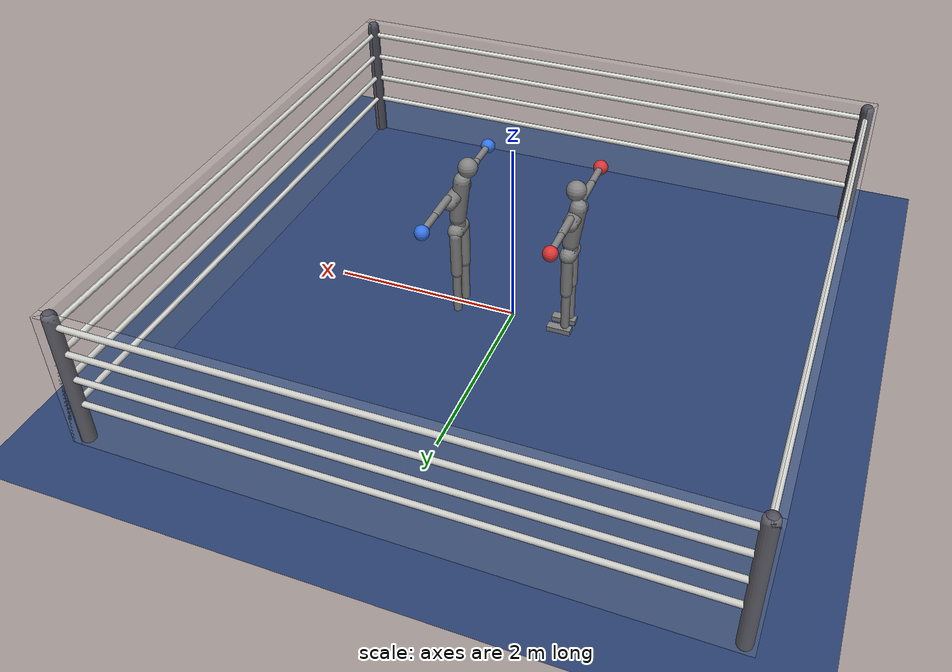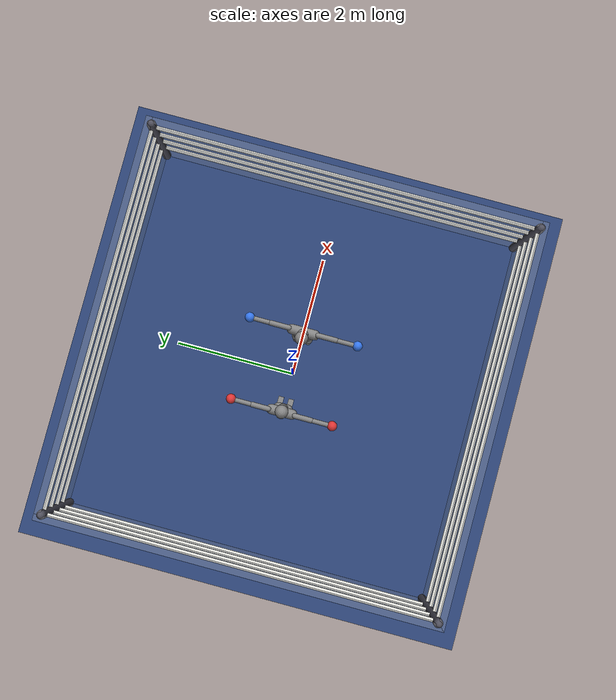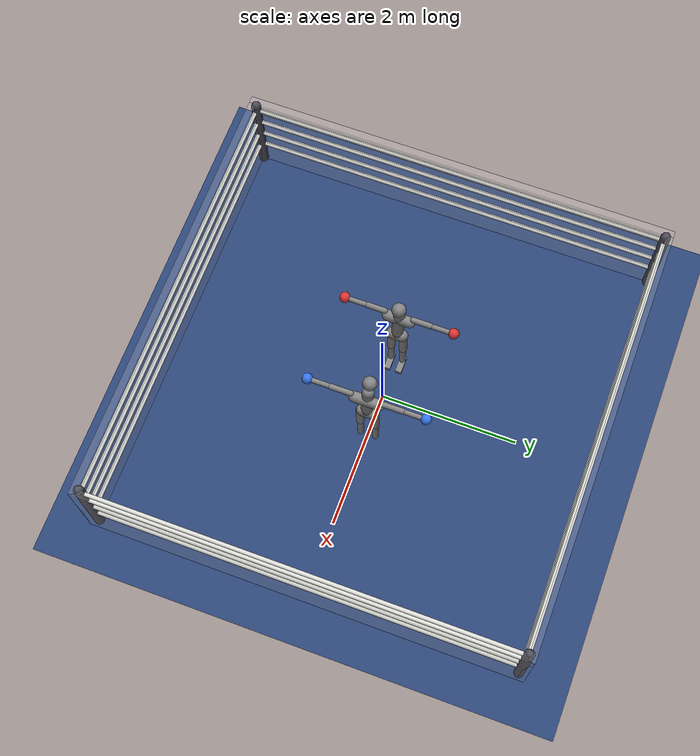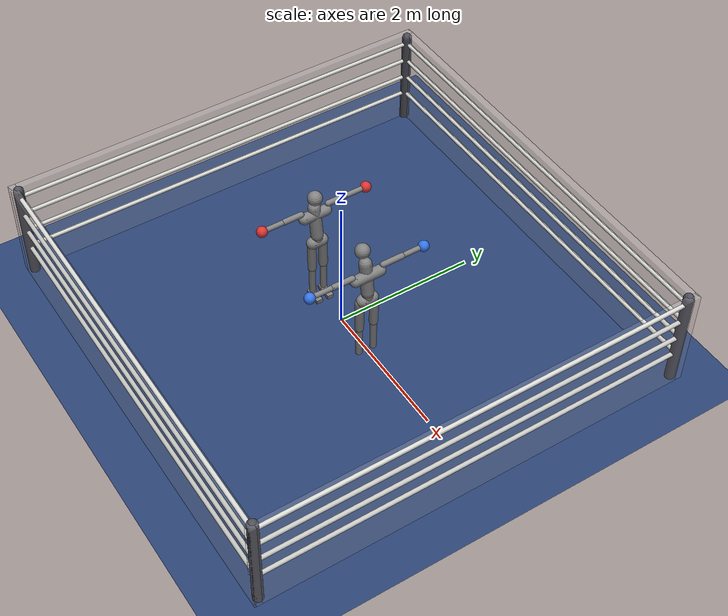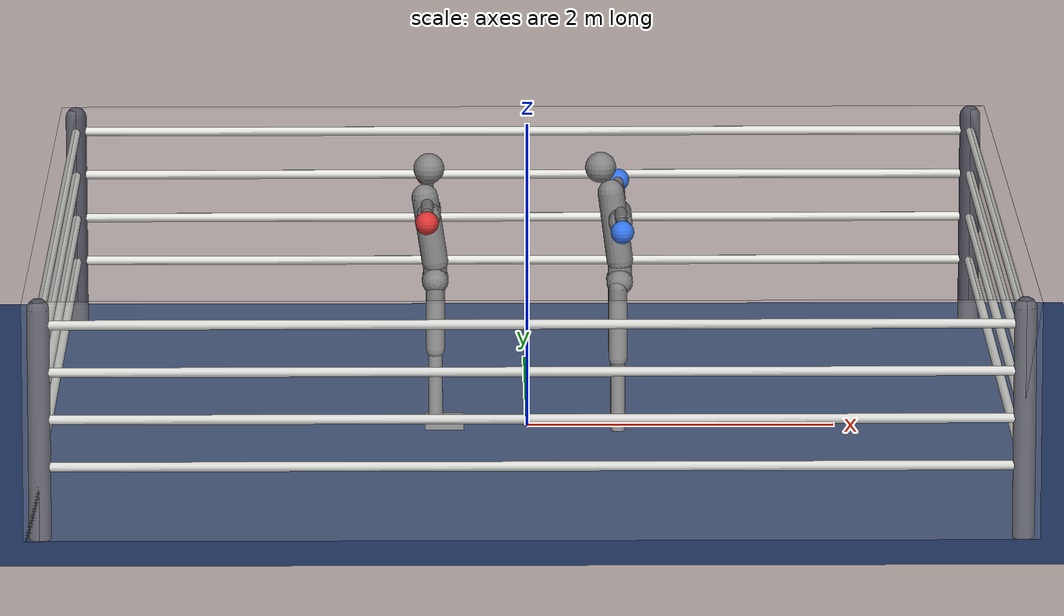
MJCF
<mujoco model="matt_vs_zombie_spar">
  <compiler angle="degree" inertiafromgeom="true" autolimits="true"/>
  <option timestep="0.005" iterations="10" ls_iterations="10" integrator="implicitfast">
    <flag eulerdamp="disable"/>
  </option>
  <default>
    <geom contype="1" conaffinity="1" condim="3" friction="1.0 0.005 0.0001" density="1000" margin="0"/>
    <joint limited="true"/>
    <position ctrllimited="true"/>
  </default>
  <asset>
    <texture name="grid" type="2d" builtin="checker" rgb1=".18 .28 .48" rgb2=".14 .22 .40" width="300" height="300"/>
    <material name="grid" texture="grid" texrepeat="6 6" reflectance="0"/>
  </asset>
  <worldbody>
    <light pos="0 0 5" dir="0 0 -1" directional="true"/>
    <geom name="floor" type="plane" contype="3" conaffinity="3" size="0 0 0.05" material="grid" friction="1.0 0.005 0.0001"/>
    <geom name="rope_n" type="box" pos="0.0000 3.1000 0.7500" size="3.1500 0.0500 0.7500" rgba="0.8 0.8 0.8 0.15"/>
    <geom name="rope_s" type="box" pos="0.0000 -3.1000 0.7500" size="3.1500 0.0500 0.7500" rgba="0.8 0.8 0.8 0.15"/>
    <geom name="rope_e" type="box" pos="3.1000 0.0000 0.7500" size="0.0500 3.1500 0.7500" rgba="0.8 0.8 0.8 0.15"/>
    <geom name="rope_w" type="box" pos="-3.1000 0.0000 0.7500" size="0.0500 3.1500 0.7500" rgba="0.8 0.8 0.8 0.15"/>
    <body name="a_pelvis" pos="-0.6000 0.0000 0.9741" quat="1.00000 0 0 0.00000">
      <freejoint name="a_root"/>
      <geom name="a_pelvis_geom" type="capsule" fromto="0.0000 -0.0700 0.0000 0.0000 0.0700 0.0000" size="0.0850" mass="7.0977" />
      <geom name="a_pelvis_up" type="capsule" fromto="0.0000 0.0000 0.0000 -0.0008 0.0000 0.0758" size="0.0765" mass="4.0351" />
      <body name="a_torso" pos="-0.0008 0.0000 0.0958">
        <joint name="a_abdomen_z" type="hinge" axis="0 0 1" range="-45 45" damping="0.5" armature="0.08" stiffness="0"/>
        <joint name="a_abdomen_y" type="hinge" axis="0 1 0" range="-60 30" damping="0.5" armature="0.08" stiffness="0"/>
        <joint name="a_abdomen_x" type="hinge" axis="1 0 0" range="-35 35" damping="0.5" armature="0.08" stiffness="0"/>
        <geom name="a_torso_geom" type="capsule" fromto="0.0000 0.0000 0.0200 -0.0653 -0.0000 0.4511" size="0.0850" mass="27.8320" />
        <geom name="a_chest_geom" type="capsule" fromto="-0.0402 -0.1614 0.3530 -0.0402 0.1614 0.3530" size="0.0765" mass="0.5"/>
        <geom name="a_head_geom" type="sphere" pos="-0.0385 -0.0000 0.6398" size="0.1000" mass="6.3504" />
        <body name="a_upper_arm_l" pos="-0.0503 0.2018 0.4412">
          <joint name="a_shoulder_x_l" type="hinge" axis="1 0 0" range="-170 30" damping="0.5" armature="0.03" stiffness="0"/>
          <joint name="a_shoulder_z_l" type="hinge" axis="0 0 1" range="-110 110" damping="0.5" armature="0.03" stiffness="0"/>
          <geom name="a_upper_arm_l_geom" type="capsule" fromto="0.0000 0.0000 0.0000 0.0000 0.2524 0.0000" size="0.0400" mass="2.1952" />
          <body name="a_forearm_l" pos="0.0000 0.2524 0.0000">
            <joint name="a_elbow_l" type="hinge" axis="0 0 1" range="-150 0" damping="0.5" armature="0.02" stiffness="0"/>
            <geom name="a_forearm_l_geom" type="capsule" fromto="0.0000 0.0000 0.0000 0.0000 0.2567 0.0000" size="0.0350" mass="1.2544" />
            <geom name="a_glove_l" type="sphere" pos="0.0000 0.3242 0.0000" size="0.0750" mass="0.7534" rgba="0.85 0.2 0.2 1"/>
          </body>
        </body>
        <body name="a_upper_arm_r" pos="-0.0503 -0.2018 0.4412">
          <joint name="a_shoulder_x_r" type="hinge" axis="1 0 0" range="-30 170" damping="0.5" armature="0.03" stiffness="0"/>
          <joint name="a_shoulder_z_r" type="hinge" axis="0 0 1" range="-110 110" damping="0.5" armature="0.03" stiffness="0"/>
          <geom name="a_upper_arm_r_geom" type="capsule" fromto="0.0000 0.0000 0.0000 0.0000 -0.2524 0.0000" size="0.0400" mass="2.1952" />
          <body name="a_forearm_r" pos="0.0000 -0.2524 0.0000">
            <joint name="a_elbow_r" type="hinge" axis="0 0 1" range="0 150" damping="0.5" armature="0.02" stiffness="0"/>
            <geom name="a_forearm_r_geom" type="capsule" fromto="0.0000 0.0000 0.0000 0.0000 -0.2567 0.0000" size="0.0350" mass="1.2544" />
            <geom name="a_glove_r" type="sphere" pos="0.0000 -0.3242 0.0000" size="0.0750" mass="0.7534" rgba="0.85 0.2 0.2 1"/>
          </body>
        </body>
      </body>
      <body name="a_thigh_l" pos="0.0008 0.0857 -0.0302">
        <joint name="a_hip_x_l" type="hinge" axis="1 0 0" range="-40 40" damping="0.5" armature="0.1" stiffness="0"/>
        <joint name="a_hip_z_l" type="hinge" axis="0 0 1" range="-35 35" damping="0.5" armature="0.1" stiffness="0"/>
        <joint name="a_hip_y_l" type="hinge" axis="0 1 0" range="-120 30" damping="0.5" armature="0.1" stiffness="0"/>
        <geom name="a_thigh_l_geom" type="capsule" fromto="0.0000 0.0000 0.0000 0.0000 0.0000 -0.4154" size="0.0600" mass="7.8400" />
        <body name="a_shin_l" pos="0.0000 0.0000 -0.4154">
          <joint name="a_knee_l" type="hinge" axis="0 1 0" range="0 150" damping="0.5" armature="0.1" stiffness="0"/>
          <geom name="a_shin_l_geom" type="capsule" fromto="0.0000 0.0000 0.0000 0.0000 0.0000 -0.4309" size="0.0450" mass="3.6456" />
          <body name="a_foot_l" pos="0.0000 0.0000 -0.4309">
            <joint name="a_ankle_y_l" type="hinge" axis="0 1 0" range="-20 50" damping="0.5" armature="0.03" stiffness="0"/>
            <joint name="a_ankle_x_l" type="hinge" axis="1 0 0" range="-25 25" damping="0.5" armature="0.03" stiffness="0"/>
            <geom name="a_foot_l_geom" type="box" pos="0.0581 0.0000 -0.0708" size="0.1262 0.0450 0.0280" mass="1.1368" friction="1.0 0.005 0.0001"/>
            <site name="a_foot_l_site" pos="0.0581 0.0000 -0.0708" size="0.01"/>
          </body>
        </body>
      </body>
      <body name="a_thigh_r" pos="0.0008 -0.0857 -0.0302">
        <joint name="a_hip_x_r" type="hinge" axis="1 0 0" range="-40 40" damping="0.5" armature="0.1" stiffness="0"/>
        <joint name="a_hip_z_r" type="hinge" axis="0 0 1" range="-35 35" damping="0.5" armature="0.1" stiffness="0"/>
        <joint name="a_hip_y_r" type="hinge" axis="0 1 0" range="-120 30" damping="0.5" armature="0.1" stiffness="0"/>
        <geom name="a_thigh_r_geom" type="capsule" fromto="0.0000 0.0000 0.0000 0.0000 0.0000 -0.4154" size="0.0600" mass="7.8400" />
        <body name="a_shin_r" pos="0.0000 0.0000 -0.4154">
          <joint name="a_knee_r" type="hinge" axis="0 1 0" range="0 150" damping="0.5" armature="0.1" stiffness="0"/>
          <geom name="a_shin_r_geom" type="capsule" fromto="0.0000 0.0000 0.0000 0.0000 0.0000 -0.4309" size="0.0450" mass="3.6456" />
          <body name="a_foot_r" pos="0.0000 0.0000 -0.4309">
            <joint name="a_ankle_y_r" type="hinge" axis="0 1 0" range="-20 50" damping="0.5" armature="0.03" stiffness="0"/>
            <joint name="a_ankle_x_r" type="hinge" axis="1 0 0" range="-25 25" damping="0.5" armature="0.03" stiffness="0"/>
            <geom name="a_foot_r_geom" type="box" pos="0.0581 0.0000 -0.0708" size="0.1262 0.0450 0.0280" mass="1.1368" friction="1.0 0.005 0.0001"/>
            <site name="a_foot_r_site" pos="0.0581 0.0000 -0.0708" size="0.01"/>
          </body>
        </body>
      </body>
    </body>
    <body name="b_pelvis" pos="0.6000 0.0000 0.9644" quat="0.00000 0 0 1.00000">
      <freejoint name="b_root"/>
      <geom name="b_pelvis_geom" type="capsule" fromto="0.0000 -0.0700 0.0000 0.0000 0.0700 0.0000" size="0.0850" mass="6.9128" />
      <geom name="b_pelvis_up" type="capsule" fromto="0.0000 0.0000 0.0000 -0.0022 -0.0000 0.0934" size="0.0765" mass="4.3194" />
      <body name="b_torso" pos="-0.0022 -0.0000 0.1134">
        <joint name="b_abdomen_z" type="hinge" axis="0 0 1" range="-45 45" damping="0.5" armature="0.08" stiffness="0"/>
        <joint name="b_abdomen_y" type="hinge" axis="0 1 0" range="-60 30" damping="0.5" armature="0.08" stiffness="0"/>
        <joint name="b_abdomen_x" type="hinge" axis="1 0 0" range="-35 35" damping="0.5" armature="0.08" stiffness="0"/>
        <geom name="b_torso_geom" type="capsule" fromto="0.0000 0.0000 0.0200 0.0595 0.0000 0.4721" size="0.0850" mass="28.0805" />
        <geom name="b_chest_geom" type="capsule" fromto="0.0001 -0.1803 0.3067 0.0001 0.1803 0.3067" size="0.0765" mass="0.5"/>
        <geom name="b_head_geom" type="sphere" pos="0.1269 0.0000 0.6388" size="0.1000" mass="6.4071" />
        <body name="b_upper_arm_l" pos="0.0001 0.2254 0.3834">
          <joint name="b_shoulder_x_l" type="hinge" axis="1 0 0" range="-170 30" damping="0.5" armature="0.03" stiffness="0"/>
          <joint name="b_shoulder_z_l" type="hinge" axis="0 0 1" range="-110 110" damping="0.5" armature="0.03" stiffness="0"/>
          <geom name="b_upper_arm_l_geom" type="capsule" fromto="0.0000 0.0000 0.0000 0.0000 0.2836 0.0000" size="0.0400" mass="2.2148" />
          <body name="b_forearm_l" pos="0.0000 0.2836 0.0000">
            <joint name="b_elbow_l" type="hinge" axis="0 0 1" range="-150 0" damping="0.5" armature="0.02" stiffness="0"/>
            <geom name="b_forearm_l_geom" type="capsule" fromto="0.0000 0.0000 0.0000 0.0000 0.2638 0.0000" size="0.0350" mass="1.2656" />
            <geom name="b_glove_l" type="sphere" pos="0.0000 0.3313 0.0000" size="0.0750" mass="0.7576" rgba="0.2 0.45 0.9 1"/>
          </body>
        </body>
        <body name="b_upper_arm_r" pos="0.0001 -0.2254 0.3834">
          <joint name="b_shoulder_x_r" type="hinge" axis="1 0 0" range="-30 170" damping="0.5" armature="0.03" stiffness="0"/>
          <joint name="b_shoulder_z_r" type="hinge" axis="0 0 1" range="-110 110" damping="0.5" armature="0.03" stiffness="0"/>
          <geom name="b_upper_arm_r_geom" type="capsule" fromto="0.0000 0.0000 0.0000 0.0000 -0.2841 0.0000" size="0.0400" mass="2.2148" />
          <body name="b_forearm_r" pos="0.0000 -0.2841 0.0000">
            <joint name="b_elbow_r" type="hinge" axis="0 0 1" range="0 150" damping="0.5" armature="0.02" stiffness="0"/>
            <geom name="b_forearm_r_geom" type="capsule" fromto="0.0000 0.0000 0.0000 0.0000 -0.2545 0.0000" size="0.0350" mass="1.2656" />
            <geom name="b_glove_r" type="sphere" pos="0.0000 -0.3220 0.0000" size="0.0750" mass="0.7576" rgba="0.2 0.45 0.9 1"/>
          </body>
        </body>
      </body>
      <body name="b_thigh_l" pos="0.0114 0.1094 -0.0284">
        <joint name="b_hip_x_l" type="hinge" axis="1 0 0" range="-40 40" damping="0.5" armature="0.1" stiffness="0"/>
        <joint name="b_hip_z_l" type="hinge" axis="0 0 1" range="-35 35" damping="0.5" armature="0.1" stiffness="0"/>
        <joint name="b_hip_y_l" type="hinge" axis="0 1 0" range="-120 30" damping="0.5" armature="0.1" stiffness="0"/>
        <geom name="b_thigh_l_geom" type="capsule" fromto="0.0000 0.0000 0.0000 0.0000 0.0000 -0.4648" size="0.0600" mass="7.9100" />
        <body name="b_shin_l" pos="0.0000 0.0000 -0.4648">
          <joint name="b_knee_l" type="hinge" axis="0 1 0" range="0 150" damping="0.5" armature="0.1" stiffness="0"/>
          <geom name="b_shin_l_geom" type="capsule" fromto="0.0000 0.0000 0.0000 0.0000 0.0000 -0.4873" size="0.0450" mass="3.6781" />
          <body name="b_foot_l" pos="0.0000 0.0000 -0.4873">
            <joint name="b_ankle_y_l" type="hinge" axis="0 1 0" range="-20 50" damping="0.5" armature="0.03" stiffness="0"/>
            <joint name="b_ankle_x_l" type="hinge" axis="1 0 0" range="-25 25" damping="0.5" armature="0.03" stiffness="0"/>
            <geom name="b_foot_l_geom" type="box" pos="0.0610 0.0000 -0.0548" size="0.1325 0.0450 0.0280" mass="1.1469" friction="1.0 0.005 0.0001"/>
            <site name="b_foot_l_site" pos="0.0610 0.0000 -0.0548" size="0.01"/>
          </body>
        </body>
      </body>
      <body name="b_thigh_r" pos="0.0114 -0.1094 -0.0284">
        <joint name="b_hip_x_r" type="hinge" axis="1 0 0" range="-40 40" damping="0.5" armature="0.1" stiffness="0"/>
        <joint name="b_hip_z_r" type="hinge" axis="0 0 1" range="-35 35" damping="0.5" armature="0.1" stiffness="0"/>
        <joint name="b_hip_y_r" type="hinge" axis="0 1 0" range="-120 30" damping="0.5" armature="0.1" stiffness="0"/>
        <geom name="b_thigh_r_geom" type="capsule" fromto="0.0000 0.0000 0.0000 0.0000 0.0000 -0.4584" size="0.0600" mass="7.9100" />
        <body name="b_shin_r" pos="0.0000 0.0000 -0.4584">
          <joint name="b_knee_r" type="hinge" axis="0 1 0" range="0 150" damping="0.5" armature="0.1" stiffness="0"/>
          <geom name="b_shin_r_geom" type="capsule" fromto="0.0000 0.0000 0.0000 0.0000 0.0000 -0.4889" size="0.0450" mass="3.6781" />
          <body name="b_foot_r" pos="0.0000 0.0000 -0.4889">
            <joint name="b_ankle_y_r" type="hinge" axis="0 1 0" range="-20 50" damping="0.5" armature="0.03" stiffness="0"/>
            <joint name="b_ankle_x_r" type="hinge" axis="1 0 0" range="-25 25" damping="0.5" armature="0.03" stiffness="0"/>
            <geom name="b_foot_r_geom" type="box" pos="0.0589 0.0000 -0.0548" size="0.1280 0.0450 0.0280" mass="1.1469" friction="1.0 0.005 0.0001"/>
            <site name="b_foot_r_site" pos="0.0589 0.0000 -0.0548" size="0.01"/>
          </body>
        </body>
      </body>
    </body>
      <geom name="rope_n_0" type="capsule" fromto="-3.05 3.05 0.45 3.05 3.05 0.45" size="0.03" solref="0.2 1" contype="3" conaffinity="3" rgba="0.86 0.86 0.84 1"/>
    <geom name="rope_s_0" type="capsule" fromto="-3.05 -3.05 0.45 3.05 -3.05 0.45" size="0.03" solref="0.2 1" contype="3" conaffinity="3" rgba="0.86 0.86 0.84 1"/>
    <geom name="rope_e_0" type="capsule" fromto="3.05 -3.05 0.45 3.05 3.05 0.45" size="0.03" solref="0.2 1" contype="3" conaffinity="3" rgba="0.86 0.86 0.84 1"/>
    <geom name="rope_w_0" type="capsule" fromto="-3.05 -3.05 0.45 -3.05 3.05 0.45" size="0.03" solref="0.2 1" contype="3" conaffinity="3" rgba="0.86 0.86 0.84 1"/>
    <geom name="rope_n_1" type="capsule" fromto="-3.05 3.05 0.75 3.05 3.05 0.75" size="0.03" solref="0.2 1" contype="3" conaffinity="3" rgba="0.86 0.86 0.84 1"/>
    <geom name="rope_s_1" type="capsule" fromto="-3.05 -3.05 0.75 3.05 -3.05 0.75" size="0.03" solref="0.2 1" contype="3" conaffinity="3" rgba="0.86 0.86 0.84 1"/>
    <geom name="rope_e_1" type="capsule" fromto="3.05 -3.05 0.75 3.05 3.05 0.75" size="0.03" solref="0.2 1" contype="3" conaffinity="3" rgba="0.86 0.86 0.84 1"/>
    <geom name="rope_w_1" type="capsule" fromto="-3.05 -3.05 0.75 -3.05 3.05 0.75" size="0.03" solref="0.2 1" contype="3" conaffinity="3" rgba="0.86 0.86 0.84 1"/>
    <geom name="rope_n_2" type="capsule" fromto="-3.05 3.05 1.05 3.05 3.05 1.05" size="0.03" solref="0.2 1" contype="3" conaffinity="3" rgba="0.86 0.86 0.84 1"/>
    <geom name="rope_s_2" type="capsule" fromto="-3.05 -3.05 1.05 3.05 -3.05 1.05" size="0.03" solref="0.2 1" contype="3" conaffinity="3" rgba="0.86 0.86 0.84 1"/>
    <geom name="rope_e_2" type="capsule" fromto="3.05 -3.05 1.05 3.05 3.05 1.05" size="0.03" solref="0.2 1" contype="3" conaffinity="3" rgba="0.86 0.86 0.84 1"/>
    <geom name="rope_w_2" type="capsule" fromto="-3.05 -3.05 1.05 -3.05 3.05 1.05" size="0.03" solref="0.2 1" contype="3" conaffinity="3" rgba="0.86 0.86 0.84 1"/>
    <geom name="rope_n_3" type="capsule" fromto="-3.05 3.05 1.35 3.05 3.05 1.35" size="0.03" solref="0.2 1" contype="3" conaffinity="3" rgba="0.86 0.86 0.84 1"/>
    <geom name="rope_s_3" type="capsule" fromto="-3.05 -3.05 1.35 3.05 -3.05 1.35" size="0.03" solref="0.2 1" contype="3" conaffinity="3" rgba="0.86 0.86 0.84 1"/>
    <geom name="rope_e_3" type="capsule" fromto="3.05 -3.05 1.35 3.05 3.05 1.35" size="0.03" solref="0.2 1" contype="3" conaffinity="3" rgba="0.86 0.86 0.84 1"/>
    <geom name="rope_w_3" type="capsule" fromto="-3.05 -3.05 1.35 -3.05 3.05 1.35" size="0.03" solref="0.2 1" contype="3" conaffinity="3" rgba="0.86 0.86 0.84 1"/>
    <geom name="post_ne" type="capsule" fromto="3.05 3.05 0 3.05 3.05 1.45" size="0.07" contype="3" conaffinity="3" rgba="0.3 0.3 0.35 1"/>
    <geom name="post_nw" type="capsule" fromto="-3.05 3.05 0 -3.05 3.05 1.45" size="0.07" contype="3" conaffinity="3" rgba="0.3 0.3 0.35 1"/>
    <geom name="post_se" type="capsule" fromto="3.05 -3.05 0 3.05 -3.05 1.45" size="0.07" contype="3" conaffinity="3" rgba="0.3 0.3 0.35 1"/>
    <geom name="post_sw" type="capsule" fromto="-3.05 -3.05 0 -3.05 -3.05 1.45" size="0.07" contype="3" conaffinity="3" rgba="0.3 0.3 0.35 1"/>
  </worldbody>
  <contact>
    <exclude body1="a_pelvis" body2="a_torso"/>
    <exclude body1="a_pelvis" body2="a_thigh_l"/>
    <exclude body1="a_thigh_l" body2="a_shin_l"/>
    <exclude body1="a_shin_l" body2="a_foot_l"/>
    <exclude body1="a_torso" body2="a_upper_arm_l"/>
    <exclude body1="a_upper_arm_l" body2="a_forearm_l"/>
    <exclude body1="a_pelvis" body2="a_thigh_r"/>
    <exclude body1="a_thigh_r" body2="a_shin_r"/>
    <exclude body1="a_shin_r" body2="a_foot_r"/>
    <exclude body1="a_torso" body2="a_upper_arm_r"/>
    <exclude body1="a_upper_arm_r" body2="a_forearm_r"/>
    <exclude body1="b_pelvis" body2="b_torso"/>
    <exclude body1="b_pelvis" body2="b_thigh_l"/>
    <exclude body1="b_thigh_l" body2="b_shin_l"/>
    <exclude body1="b_shin_l" body2="b_foot_l"/>
    <exclude body1="b_torso" body2="b_upper_arm_l"/>
    <exclude body1="b_upper_arm_l" body2="b_forearm_l"/>
    <exclude body1="b_pelvis" body2="b_thigh_r"/>
    <exclude body1="b_thigh_r" body2="b_shin_r"/>
    <exclude body1="b_shin_r" body2="b_foot_r"/>
    <exclude body1="b_torso" body2="b_upper_arm_r"/>
    <exclude body1="b_upper_arm_r" body2="b_forearm_r"/>
  </contact>
  <actuator>
    <position name="a_abdomen_z" joint="a_abdomen_z" kp="450.0" kv="21.0" forcerange="-170.0 170.0" ctrlrange="-0.7854 0.7854"/>
    <position name="a_abdomen_y" joint="a_abdomen_y" kp="450.0" kv="21.0" forcerange="-170.0 170.0" ctrlrange="-1.0472 0.5236"/>
    <position name="a_abdomen_x" joint="a_abdomen_x" kp="450.0" kv="21.0" forcerange="-170.0 170.0" ctrlrange="-0.6109 0.6109"/>
    <position name="a_shoulder_x_l" joint="a_shoulder_x_l" kp="160.0" kv="8.0" forcerange="-100.0 100.0" ctrlrange="-2.9671 0.5236"/>
    <position name="a_shoulder_z_l" joint="a_shoulder_z_l" kp="160.0" kv="8.0" forcerange="-100.0 100.0" ctrlrange="-1.9199 1.9199"/>
    <position name="a_elbow_l" joint="a_elbow_l" kp="110.0" kv="5.5" forcerange="-70.0 70.0" ctrlrange="-2.6180 0.0000"/>
    <position name="a_shoulder_x_r" joint="a_shoulder_x_r" kp="160.0" kv="8.0" forcerange="-100.0 100.0" ctrlrange="-0.5236 2.9671"/>
    <position name="a_shoulder_z_r" joint="a_shoulder_z_r" kp="160.0" kv="8.0" forcerange="-100.0 100.0" ctrlrange="-1.9199 1.9199"/>
    <position name="a_elbow_r" joint="a_elbow_r" kp="110.0" kv="5.5" forcerange="-70.0 70.0" ctrlrange="0.0000 2.6180"/>
    <position name="a_hip_x_l" joint="a_hip_x_l" kp="600.0" kv="30.0" forcerange="-240.0 240.0" ctrlrange="-0.6981 0.6981"/>
    <position name="a_hip_z_l" joint="a_hip_z_l" kp="600.0" kv="30.0" forcerange="-240.0 240.0" ctrlrange="-0.6109 0.6109"/>
    <position name="a_hip_y_l" joint="a_hip_y_l" kp="600.0" kv="30.0" forcerange="-240.0 240.0" ctrlrange="-2.0944 0.5236"/>
    <position name="a_knee_l" joint="a_knee_l" kp="600.0" kv="30.0" forcerange="-260.0 260.0" ctrlrange="0.0000 2.6180"/>
    <position name="a_ankle_y_l" joint="a_ankle_y_l" kp="750.0" kv="30.0" forcerange="-220.0 220.0" ctrlrange="-0.3491 0.8727"/>
    <position name="a_ankle_x_l" joint="a_ankle_x_l" kp="80.0" kv="4.0" forcerange="-60.0 60.0" ctrlrange="-0.4363 0.4363"/>
    <position name="a_hip_x_r" joint="a_hip_x_r" kp="600.0" kv="30.0" forcerange="-240.0 240.0" ctrlrange="-0.6981 0.6981"/>
    <position name="a_hip_z_r" joint="a_hip_z_r" kp="600.0" kv="30.0" forcerange="-240.0 240.0" ctrlrange="-0.6109 0.6109"/>
    <position name="a_hip_y_r" joint="a_hip_y_r" kp="600.0" kv="30.0" forcerange="-240.0 240.0" ctrlrange="-2.0944 0.5236"/>
    <position name="a_knee_r" joint="a_knee_r" kp="600.0" kv="30.0" forcerange="-260.0 260.0" ctrlrange="0.0000 2.6180"/>
    <position name="a_ankle_y_r" joint="a_ankle_y_r" kp="750.0" kv="30.0" forcerange="-220.0 220.0" ctrlrange="-0.3491 0.8727"/>
    <position name="a_ankle_x_r" joint="a_ankle_x_r" kp="80.0" kv="4.0" forcerange="-60.0 60.0" ctrlrange="-0.4363 0.4363"/>
    <position name="b_abdomen_z" joint="b_abdomen_z" kp="450.0" kv="21.0" forcerange="-170.0 170.0" ctrlrange="-0.7854 0.7854"/>
    <position name="b_abdomen_y" joint="b_abdomen_y" kp="450.0" kv="21.0" forcerange="-170.0 170.0" ctrlrange="-1.0472 0.5236"/>
    <position name="b_abdomen_x" joint="b_abdomen_x" kp="450.0" kv="21.0" forcerange="-170.0 170.0" ctrlrange="-0.6109 0.6109"/>
    <position name="b_shoulder_x_l" joint="b_shoulder_x_l" kp="160.0" kv="8.0" forcerange="-100.0 100.0" ctrlrange="-2.9671 0.5236"/>
    <position name="b_shoulder_z_l" joint="b_shoulder_z_l" kp="160.0" kv="8.0" forcerange="-100.0 100.0" ctrlrange="-1.9199 1.9199"/>
    <position name="b_elbow_l" joint="b_elbow_l" kp="110.0" kv="5.5" forcerange="-70.0 70.0" ctrlrange="-2.6180 0.0000"/>
    <position name="b_shoulder_x_r" joint="b_shoulder_x_r" kp="160.0" kv="8.0" forcerange="-100.0 100.0" ctrlrange="-0.5236 2.9671"/>
    <position name="b_shoulder_z_r" joint="b_shoulder_z_r" kp="160.0" kv="8.0" forcerange="-100.0 100.0" ctrlrange="-1.9199 1.9199"/>
    <position name="b_elbow_r" joint="b_elbow_r" kp="110.0" kv="5.5" forcerange="-70.0 70.0" ctrlrange="0.0000 2.6180"/>
    <position name="b_hip_x_l" joint="b_hip_x_l" kp="600.0" kv="30.0" forcerange="-240.0 240.0" ctrlrange="-0.6981 0.6981"/>
    <position name="b_hip_z_l" joint="b_hip_z_l" kp="600.0" kv="30.0" forcerange="-240.0 240.0" ctrlrange="-0.6109 0.6109"/>
    <position name="b_hip_y_l" joint="b_hip_y_l" kp="600.0" kv="30.0" forcerange="-240.0 240.0" ctrlrange="-2.0944 0.5236"/>
    <position name="b_knee_l" joint="b_knee_l" kp="600.0" kv="30.0" forcerange="-260.0 260.0" ctrlrange="0.0000 2.6180"/>
    <position name="b_ankle_y_l" joint="b_ankle_y_l" kp="750.0" kv="30.0" forcerange="-220.0 220.0" ctrlrange="-0.3491 0.8727"/>
    <position name="b_ankle_x_l" joint="b_ankle_x_l" kp="80.0" kv="4.0" forcerange="-60.0 60.0" ctrlrange="-0.4363 0.4363"/>
    <position name="b_hip_x_r" joint="b_hip_x_r" kp="600.0" kv="30.0" forcerange="-240.0 240.0" ctrlrange="-0.6981 0.6981"/>
    <position name="b_hip_z_r" joint="b_hip_z_r" kp="600.0" kv="30.0" forcerange="-240.0 240.0" ctrlrange="-0.6109 0.6109"/>
    <position name="b_hip_y_r" joint="b_hip_y_r" kp="600.0" kv="30.0" forcerange="-240.0 240.0" ctrlrange="-2.0944 0.5236"/>
    <position name="b_knee_r" joint="b_knee_r" kp="600.0" kv="30.0" forcerange="-260.0 260.0" ctrlrange="0.0000 2.6180"/>
    <position name="b_ankle_y_r" joint="b_ankle_y_r" kp="750.0" kv="30.0" forcerange="-220.0 220.0" ctrlrange="-0.3491 0.8727"/>
    <position name="b_ankle_x_r" joint="b_ankle_x_r" kp="80.0" kv="4.0" forcerange="-60.0 60.0" ctrlrange="-0.4363 0.4363"/>
  </actuator>
  <keyframe>
    <key name="stand" qpos="-0.6000 0.0000 0.9544 1.00000 0 0 0.00000 0.0000 0.0000 0.0000 -1.3265 -0.7330 -1.9548 1.3265 0.7330 1.9548 0.0000 0.0000 -0.1765 0.4538 -0.2773 0.0000 0.0000 0.0000 -0.1765 0.4538 -0.2773 0.0000 0.6000 0.0000 1.0409 0.00000 0 0 1.00000 0.0000 0.0000 0.0000 -1.3265 -0.7330 -1.9548 1.3265 0.7330 1.9548 0.0000 0.0000 -0.2258 0.4538 -0.2279 0.0000 0.0000 0.0000 -0.2258 0.4538 -0.2279 0.0000"/>
  </keyframe>
</mujoco>
